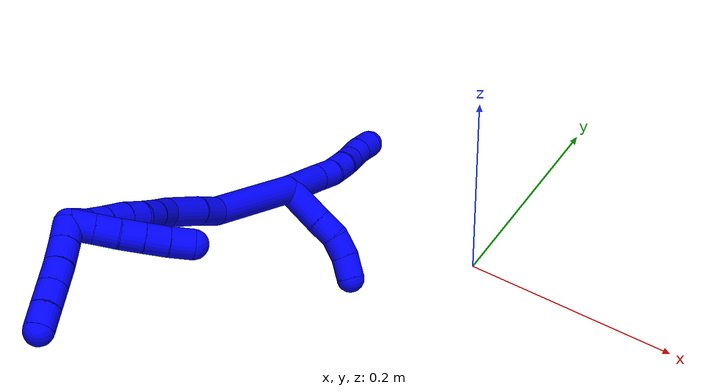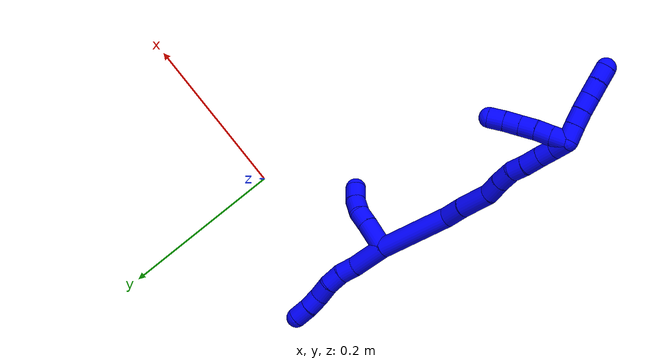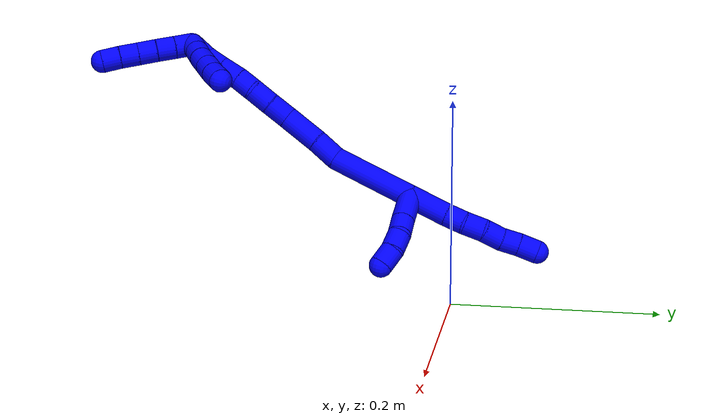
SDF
<sdf version="1.7">
 <world name="default">
  <model name="photoneo_s_sensor">
   <static>1</static>
   <pose>0 0 2 1.57079 1.57079 3.14159</pose>
   <link name="link">
    <inertial><mass>0.1</mass></inertial>
    <sensor name="sensor" type="depth">
     <update_rate>30</update_rate>
     <camera>
      <horizontal_fov>1.22</horizontal_fov>
      <image><width>1920</width><height>1200</height><format>B8G8R8</format></image>
      <clip><near>0.1</near><far>4</far></clip>
      <depth_camera><output>points</output></depth_camera>
     </camera>
     <plugin name="camera_plugin" filename="libgazebo_ros_depth_camera.so">
      <baseline>0.2</baseline>
      <alwaysOn>1</alwaysOn>
      <updateRate>0.0</updateRate>
      <cameraName>camera_ir</cameraName>
      <imageTopicName>/camera/color/image_raw</imageTopicName>
      <cameraInfoTopicName>/camera/color/camera_info</cameraInfoTopicName>
      <depthImageTopicName>/camera/depth/image_raw</depthImageTopicName>
      <depthImageCameraInfoTopicName>/camera/depth/camera_info</depthImageCameraInfoTopicName>
      <pointCloudTopicName>/camera/depth/points</pointCloudTopicName>
      <frameName>fr_optical</frameName>
      <pointCloudCutoff>0.1</pointCloudCutoff>
      <pointCloudCutoffMax>2.0</pointCloudCutoffMax>
      <distortionK1>0</distortionK1>
      <distortionK2>0</distortionK2>
      <distortionK3>0</distortionK3>
      <distortionT1>0</distortionT1>
      <distortionT2>0</distortionT2>
      <CxPrime>0</CxPrime>
      <Cx>0</Cx>
      <Cy>0</Cy>
      <focalLength>0</focalLength>
      <hackBaseline>0</hackBaseline>
     </plugin>
    </sensor>
   </link>
  </model>
  <model name="bin">
   <static>1</static>
   <link name="bottom">
    <collision name="collision-bottom">
     <pose>0 0 -0.01 0 -0 0</pose>
     <geometry><box><size>0.8 0.6 0.02</size></box></geometry>
     <surface>
      <friction><ode><mu>100</mu><mu2>100</mu2></ode></friction>
      <contact><collide_bitmask>65535</collide_bitmask></contact>
     </surface>
    </collision>
   </link>
   <link name="west_wall">
    <collision name="collision-west_wall">
     <pose>-0.41 0 0.1 0 -0 0</pose>
     <geometry><box><size>0.02 0.6 0.2</size></box></geometry>
     <surface>
      <friction><ode><mu>100</mu><mu2>100</mu2></ode></friction>
      <contact><collide_bitmask>65535</collide_bitmask></contact>
     </surface>
    </collision>
   </link>
   <link name="east_wall">
    <collision name="collision-east_wall">
     <pose>0.41 0 0.1 0 -0 0</pose>
     <geometry><box><size>0.02 0.6 0.2</size></box></geometry>
     <surface>
      <friction><ode><mu>100</mu><mu2>100</mu2></ode></friction>
      <contact><collide_bitmask>65535</collide_bitmask></contact>
     </surface>
    </collision>
   </link>
   <link name="south_wall">
    <collision name="collision-south_wall">
     <pose>0 -0.31 0.1 0 -0 0</pose>
     <geometry><box><size>0.8 0.02 0.2</size></box></geometry>
     <surface>
      <friction><ode><mu>100</mu><mu2>100</mu2></ode></friction>
      <contact><collide_bitmask>65535</collide_bitmask></contact>
     </surface>
    </collision>
   </link>
   <link name="north_wall">
    <collision name="collision-north_wall">
     <pose>0 0.31 0.1 0 -0 0</pose>
     <geometry><box><size>0.8 0.02 0.2</size></box></geometry>
     <surface>
      <friction><ode><mu>100</mu><mu2>100</mu2></ode></friction>
      <contact><collide_bitmask>65535</collide_bitmask></contact>
     </surface>
    </collision>
   </link>
  </model>
  <model name="1">
   <static>0</static>
   <link name="1">
    <collision name="collision-cylinder-e_1_2_8">
     <pose>0.003681 0.00508 -0.021301 -2.90746 0.166554 -1.2345</pose>
     <geometry><cylinder><radius>0.0125</radius><length>0.04441</length></cylinder></geometry>
     <surface>
      <friction><ode><mu>1.16</mu><mu2>1.16</mu2><slip1>0</slip1><slip2>0</slip2></ode></friction>
      <contact><ode><kp>1e+06</kp><kd>1</kd><max_vel>0</max_vel><min_depth>0.001</min_depth></ode></contact>
     </surface>
    </collision>
    <visual name="visual-cylinder-e_1_2_8">
     <pose>0.003681 0.00508 -0.021301 -2.90746 0.166554 -1.2345</pose>
     <geometry><cylinder><radius>0.0125</radius><length>0.04441</length></cylinder></geometry>
     <material><ambient>0 0 1 1</ambient></material>
    </visual>
    <collision name="collision-cylinder-e_2_8_9">
     <pose>0.008081 0.011726 -0.052931 -2.99119 0.068609 -0.854826</pose>
     <geometry><cylinder><radius>0.0125</radius><length>0.020946</length></cylinder></geometry>
     <surface>
      <friction><ode><mu>1.16</mu><mu2>1.16</mu2><slip1>0</slip1><slip2>0</slip2></ode></friction>
      <contact><ode><kp>1e+06</kp><kd>1</kd><max_vel>0</max_vel><min_depth>0.001</min_depth></ode></contact>
     </surface>
    </collision>
    <visual name="visual-cylinder-e_2_8_9">
     <pose>0.008081 0.011726 -0.052931 -2.99119 0.068609 -0.854826</pose>
     <geometry><cylinder><radius>0.0125</radius><length>0.020946</length></cylinder></geometry>
     <material><ambient>0 0 1 1</ambient></material>
    </visual>
    <collision name="collision-cylinder-e_3_9_10">
     <pose>0.011891 0.015047 -0.073602 -2.97346 0.286702 -2.08474</pose>
     <geometry><cylinder><radius>0.0125</radius><length>0.021868</length></cylinder></geometry>
     <surface>
      <friction><ode><mu>1.16</mu><mu2>1.16</mu2><slip1>0</slip1><slip2>0</slip2></ode></friction>
      <contact><ode><kp>1e+06</kp><kd>1</kd><max_vel>0</max_vel><min_depth>0.001</min_depth></ode></contact>
     </surface>
    </collision>
    <visual name="visual-cylinder-e_3_9_10">
     <pose>0.011891 0.015047 -0.073602 -2.97346 0.286702 -2.08474</pose>
     <geometry><cylinder><radius>0.0125</radius><length>0.021868</length></cylinder></geometry>
     <material><ambient>0 0 1 1</ambient></material>
    </visual>
    <collision name="collision-cylinder-e_4_10_11">
     <pose>0.019364 0.020187 -0.093113 -2.78801 0.421343 -1.74963</pose>
     <geometry><cylinder><radius>0.0125</radius><length>0.021428</length></cylinder></geometry>
     <surface>
      <friction><ode><mu>1.16</mu><mu2>1.16</mu2><slip1>0</slip1><slip2>0</slip2></ode></friction>
      <contact><ode><kp>1e+06</kp><kd>1</kd><max_vel>0</max_vel><min_depth>0.001</min_depth></ode></contact>
     </surface>
    </collision>
    <visual name="visual-cylinder-e_4_10_11">
     <pose>0.019364 0.020187 -0.093113 -2.78801 0.421343 -1.74963</pose>
     <geometry><cylinder><radius>0.0125</radius><length>0.021428</length></cylinder></geometry>
     <material><ambient>0 0 1 1</ambient></material>
    </visual>
    <collision name="collision-cylinder-e_5_11_12">
     <pose>0.027533 0.024839 -0.11147 -3.00456 0.38774 -2.4691</pose>
     <geometry><cylinder><radius>0.0125</radius><length>0.020031</length></cylinder></geometry>
     <surface>
      <friction><ode><mu>1.16</mu><mu2>1.16</mu2><slip1>0</slip1><slip2>0</slip2></ode></friction>
      <contact><ode><kp>1e+06</kp><kd>1</kd><max_vel>0</max_vel><min_depth>0.001</min_depth></ode></contact>
     </surface>
    </collision>
    <visual name="visual-cylinder-e_5_11_12">
     <pose>0.027533 0.024839 -0.11147 -3.00456 0.38774 -2.4691</pose>
     <geometry><cylinder><radius>0.0125</radius><length>0.020031</length></cylinder></geometry>
     <material><ambient>0 0 1 1</ambient></material>
    </visual>
    <collision name="collision-cylinder-e_6_12_6">
     <pose>0.034039 0.027867 -0.13081 -2.96981 0.258001 -1.96963</pose>
     <geometry><cylinder><radius>0.0125</radius><length>0.021317</length></cylinder></geometry>
     <surface>
      <friction><ode><mu>1.16</mu><mu2>1.16</mu2><slip1>0</slip1><slip2>0</slip2></ode></friction>
      <contact><ode><kp>1e+06</kp><kd>1</kd><max_vel>0</max_vel><min_depth>0.001</min_depth></ode></contact>
     </surface>
    </collision>
    <visual name="visual-cylinder-e_6_12_6">
     <pose>0.034039 0.027867 -0.13081 -2.96981 0.258001 -1.96963</pose>
     <geometry><cylinder><radius>0.0125</radius><length>0.021317</length></cylinder></geometry>
     <material><ambient>0 0 1 1</ambient></material>
    </visual>
    <collision name="collision-cylinder-e_1_2_13">
     <pose>-0.016618 0.008636 -0.004537 -2.05456 -1.03994 1.51694</pose>
     <geometry><cylinder><radius>0.0125</radius><length>0.038539</length></cylinder></geometry>
     <surface>
      <friction><ode><mu>1.16</mu><mu2>1.16</mu2><slip1>0</slip1><slip2>0</slip2></ode></friction>
      <contact><ode><kp>1e+06</kp><kd>1</kd><max_vel>0</max_vel><min_depth>0.001</min_depth></ode></contact>
     </surface>
    </collision>
    <visual name="visual-cylinder-e_1_2_13">
     <pose>-0.016618 0.008636 -0.004537 -2.05456 -1.03994 1.51694</pose>
     <geometry><cylinder><radius>0.0125</radius><length>0.038539</length></cylinder></geometry>
     <material><ambient>0 0 1 1</ambient></material>
    </visual>
    <collision name="collision-cylinder-e_2_13_14">
     <pose>-0.041958 0.021716 -0.011844 -2.12807 -1.03017 1.59032</pose>
     <geometry><cylinder><radius>0.0125</radius><length>0.020348</length></cylinder></geometry>
     <surface>
      <friction><ode><mu>1.16</mu><mu2>1.16</mu2><slip1>0</slip1><slip2>0</slip2></ode></friction>
      <contact><ode><kp>1e+06</kp><kd>1</kd><max_vel>0</max_vel><min_depth>0.001</min_depth></ode></contact>
     </surface>
    </collision>
    <visual name="visual-cylinder-e_2_13_14">
     <pose>-0.041958 0.021716 -0.011844 -2.12807 -1.03017 1.59032</pose>
     <geometry><cylinder><radius>0.0125</radius><length>0.020348</length></cylinder></geometry>
     <material><ambient>0 0 1 1</ambient></material>
    </visual>
    <collision name="collision-cylinder-e_3_14_15">
     <pose>-0.058255 0.032805 -0.015215 -1.66105 -0.848614 0.918438</pose>
     <geometry><cylinder><radius>0.0125</radius><length>0.020187</length></cylinder></geometry>
     <surface>
      <friction><ode><mu>1.16</mu><mu2>1.16</mu2><slip1>0</slip1><slip2>0</slip2></ode></friction>
      <contact><ode><kp>1e+06</kp><kd>1</kd><max_vel>0</max_vel><min_depth>0.001</min_depth></ode></contact>
     </surface>
    </collision>
    <visual name="visual-cylinder-e_3_14_15">
     <pose>-0.058255 0.032805 -0.015215 -1.66105 -0.848614 0.918438</pose>
     <geometry><cylinder><radius>0.0125</radius><length>0.020187</length></cylinder></geometry>
     <material><ambient>0 0 1 1</ambient></material>
    </visual>
    <collision name="collision-cylinder-e_4_15_5">
     <pose>-0.073255 0.046581 -0.013952 -1.31506 -0.789191 0.622221</pose>
     <geometry><cylinder><radius>0.0125</radius><length>0.020926</length></cylinder></geometry>
     <surface>
      <friction><ode><mu>1.16</mu><mu2>1.16</mu2><slip1>0</slip1><slip2>0</slip2></ode></friction>
      <contact><ode><kp>1e+06</kp><kd>1</kd><max_vel>0</max_vel><min_depth>0.001</min_depth></ode></contact>
     </surface>
    </collision>
    <visual name="visual-cylinder-e_4_15_5">
     <pose>-0.073255 0.046581 -0.013952 -1.31506 -0.789191 0.622221</pose>
     <geometry><cylinder><radius>0.0125</radius><length>0.020926</length></cylinder></geometry>
     <material><ambient>0 0 1 1</ambient></material>
    </visual>
    <collision name="collision-cylinder-e_1_2_16">
     <pose>-0.001661 -0.008588 0.046033 0.18444 -0.035445 -0.003278</pose>
     <geometry><cylinder><radius>0.0125</radius><length>0.093714</length></cylinder></geometry>
     <surface>
      <friction><ode><mu>1.16</mu><mu2>1.16</mu2><slip1>0</slip1><slip2>0</slip2></ode></friction>
      <contact><ode><kp>1e+06</kp><kd>1</kd><max_vel>0</max_vel><min_depth>0.001</min_depth></ode></contact>
     </surface>
    </collision>
    <visual name="visual-cylinder-e_1_2_16">
     <pose>-0.001661 -0.008588 0.046033 0.18444 -0.035445 -0.003278</pose>
     <geometry><cylinder><radius>0.0125</radius><length>0.093714</length></cylinder></geometry>
     <material><ambient>0 0 1 1</ambient></material>
    </visual>
    <collision name="collision-cylinder-e_2_16_17">
     <pose>-0.004907 -0.023952 0.104396 0.50251 -0.112275 -0.028847</pose>
     <geometry><cylinder><radius>0.0125</radius><length>0.028316</length></cylinder></geometry>
     <surface>
      <friction><ode><mu>1.16</mu><mu2>1.16</mu2><slip1>0</slip1><slip2>0</slip2></ode></friction>
      <contact><ode><kp>1e+06</kp><kd>1</kd><max_vel>0</max_vel><min_depth>0.001</min_depth></ode></contact>
     </surface>
    </collision>
    <visual name="visual-cylinder-e_2_16_17">
     <pose>-0.004907 -0.023952 0.104396 0.50251 -0.112275 -0.028847</pose>
     <geometry><cylinder><radius>0.0125</radius><length>0.028316</length></cylinder></geometry>
     <material><ambient>0 0 1 1</ambient></material>
    </visual>
    <collision name="collision-cylinder-e_3_17_18">
     <pose>-0.007688 -0.039233 0.136179 0.412144 -0.056196 -0.01175</pose>
     <geometry><cylinder><radius>0.0125</radius><length>0.04253</length></cylinder></geometry>
     <surface>
      <friction><ode><mu>1.16</mu><mu2>1.16</mu2><slip1>0</slip1><slip2>0</slip2></ode></friction>
      <contact><ode><kp>1e+06</kp><kd>1</kd><max_vel>0</max_vel><min_depth>0.001</min_depth></ode></contact>
     </surface>
    </collision>
    <visual name="visual-cylinder-e_3_17_18">
     <pose>-0.007688 -0.039233 0.136179 0.412144 -0.056196 -0.01175</pose>
     <geometry><cylinder><radius>0.0125</radius><length>0.04253</length></cylinder></geometry>
     <material><ambient>0 0 1 1</ambient></material>
    </visual>
    <collision name="collision-cylinder-e_4_18_19">
     <pose>-0.012856 -0.053812 0.165922 0.533304 -0.321041 -0.088398</pose>
     <geometry><cylinder><radius>0.0125</radius><length>0.025183</length></cylinder></geometry>
     <surface>
      <friction><ode><mu>1.16</mu><mu2>1.16</mu2><slip1>0</slip1><slip2>0</slip2></ode></friction>
      <contact><ode><kp>1e+06</kp><kd>1</kd><max_vel>0</max_vel><min_depth>0.001</min_depth></ode></contact>
     </surface>
    </collision>
    <visual name="visual-cylinder-e_4_18_19">
     <pose>-0.012856 -0.053812 0.165922 0.533304 -0.321041 -0.088398</pose>
     <geometry><cylinder><radius>0.0125</radius><length>0.025183</length></cylinder></geometry>
     <material><ambient>0 0 1 1</ambient></material>
    </visual>
    <collision name="collision-cylinder-e_5_19_20">
     <pose>-0.019689 -0.065468 0.1862 0.509565 -0.244951 -0.064095</pose>
     <geometry><cylinder><radius>0.0125</radius><length>0.023591</length></cylinder></geometry>
     <surface>
      <friction><ode><mu>1.16</mu><mu2>1.16</mu2><slip1>0</slip1><slip2>0</slip2></ode></friction>
      <contact><ode><kp>1e+06</kp><kd>1</kd><max_vel>0</max_vel><min_depth>0.001</min_depth></ode></contact>
     </surface>
    </collision>
    <visual name="visual-cylinder-e_5_19_20">
     <pose>-0.019689 -0.065468 0.1862 0.509565 -0.244951 -0.064095</pose>
     <geometry><cylinder><radius>0.0125</radius><length>0.023591</length></cylinder></geometry>
     <material><ambient>0 0 1 1</ambient></material>
    </visual>
    <collision name="collision-cylinder-e_6_20_21">
     <pose>-0.022691 -0.074799 0.205484 0.383448 -0.01406 -0.002729</pose>
     <geometry><cylinder><radius>0.0125</radius><length>0.020046</length></cylinder></geometry>
     <surface>
      <friction><ode><mu>1.16</mu><mu2>1.16</mu2><slip1>0</slip1><slip2>0</slip2></ode></friction>
      <contact><ode><kp>1e+06</kp><kd>1</kd><max_vel>0</max_vel><min_depth>0.001</min_depth></ode></contact>
     </surface>
    </collision>
    <visual name="visual-cylinder-e_6_20_21">
     <pose>-0.022691 -0.074799 0.205484 0.383448 -0.01406 -0.002729</pose>
     <geometry><cylinder><radius>0.0125</radius><length>0.020046</length></cylinder></geometry>
     <material><ambient>0 0 1 1</ambient></material>
    </visual>
    <collision name="collision-cylinder-e_7_21_22">
     <pose>-0.024054 -0.082213 0.226015 0.315228 -0.103051 -0.016392</pose>
     <geometry><cylinder><radius>0.0125</radius><length>0.023763</length></cylinder></geometry>
     <surface>
      <friction><ode><mu>1.16</mu><mu2>1.16</mu2><slip1>0</slip1><slip2>0</slip2></ode></friction>
      <contact><ode><kp>1e+06</kp><kd>1</kd><max_vel>0</max_vel><min_depth>0.001</min_depth></ode></contact>
     </surface>
    </collision>
    <visual name="visual-cylinder-e_7_21_22">
     <pose>-0.024054 -0.082213 0.226015 0.315228 -0.103051 -0.016392</pose>
     <geometry><cylinder><radius>0.0125</radius><length>0.023763</length></cylinder></geometry>
     <material><ambient>0 0 1 1</ambient></material>
    </visual>
    <collision name="collision-cylinder-e_8_22_23">
     <pose>-0.026035 -0.089239 0.246994 0.332211 -0.073467 -0.012322</pose>
     <geometry><cylinder><radius>0.0125</radius><length>0.02067</length></cylinder></geometry>
     <surface>
      <friction><ode><mu>1.16</mu><mu2>1.16</mu2><slip1>0</slip1><slip2>0</slip2></ode></friction>
      <contact><ode><kp>1e+06</kp><kd>1</kd><max_vel>0</max_vel><min_depth>0.001</min_depth></ode></contact>
     </surface>
    </collision>
    <visual name="visual-cylinder-e_8_22_23">
     <pose>-0.026035 -0.089239 0.246994 0.332211 -0.073467 -0.012322</pose>
     <geometry><cylinder><radius>0.0125</radius><length>0.02067</length></cylinder></geometry>
     <material><ambient>0 0 1 1</ambient></material>
    </visual>
    <collision name="collision-cylinder-e_9_23_1">
     <pose>-0.027688 -0.097814 0.266489 0.491002 -0.080773 -0.020249</pose>
     <geometry><cylinder><radius>0.0125</radius><length>0.022187</length></cylinder></geometry>
     <surface>
      <friction><ode><mu>1.16</mu><mu2>1.16</mu2><slip1>0</slip1><slip2>0</slip2></ode></friction>
      <contact><ode><kp>1e+06</kp><kd>1</kd><max_vel>0</max_vel><min_depth>0.001</min_depth></ode></contact>
     </surface>
    </collision>
    <visual name="visual-cylinder-e_9_23_1">
     <pose>-0.027688 -0.097814 0.266489 0.491002 -0.080773 -0.020249</pose>
     <geometry><cylinder><radius>0.0125</radius><length>0.022187</length></cylinder></geometry>
     <material><ambient>0 0 1 1</ambient></material>
    </visual>
    <collision name="collision-cylinder-e_1_1_24">
     <pose>-0.035219 -0.101799 0.26886 -2.97668 -0.72554 2.71283</pose>
     <geometry><cylinder><radius>0.0125</radius><length>0.02</length></cylinder></geometry>
     <surface>
      <friction><ode><mu>1.16</mu><mu2>1.16</mu2><slip1>0</slip1><slip2>0</slip2></ode></friction>
      <contact><ode><kp>1e+06</kp><kd>1</kd><max_vel>0</max_vel><min_depth>0.001</min_depth></ode></contact>
     </surface>
    </collision>
    <visual name="visual-cylinder-e_1_1_24">
     <pose>-0.035219 -0.101799 0.26886 -2.97668 -0.72554 2.71283</pose>
     <geometry><cylinder><radius>0.0125</radius><length>0.02</length></cylinder></geometry>
     <material><ambient>0 0 1 1</ambient></material>
    </visual>
    <collision name="collision-cylinder-e_2_24_25">
     <pose>-0.048711 -0.099496 0.254281 -2.99334 -0.75556 2.77161</pose>
     <geometry><cylinder><radius>0.0125</radius><length>0.02</length></cylinder></geometry>
     <surface>
      <friction><ode><mu>1.16</mu><mu2>1.16</mu2><slip1>0</slip1><slip2>0</slip2></ode></friction>
      <contact><ode><kp>1e+06</kp><kd>1</kd><max_vel>0</max_vel><min_depth>0.001</min_depth></ode></contact>
     </surface>
    </collision>
    <visual name="visual-cylinder-e_2_24_25">
     <pose>-0.048711 -0.099496 0.254281 -2.99334 -0.75556 2.77161</pose>
     <geometry><cylinder><radius>0.0125</radius><length>0.02</length></cylinder></geometry>
     <material><ambient>0 0 1 1</ambient></material>
    </visual>
    <collision name="collision-cylinder-e_3_25_26">
     <pose>-0.061698 -0.097096 0.239293 -2.97312 -0.659879 2.65813</pose>
     <geometry><cylinder><radius>0.0125</radius><length>0.02</length></cylinder></geometry>
     <surface>
      <friction><ode><mu>1.16</mu><mu2>1.16</mu2><slip1>0</slip1><slip2>0</slip2></ode></friction>
      <contact><ode><kp>1e+06</kp><kd>1</kd><max_vel>0</max_vel><min_depth>0.001</min_depth></ode></contact>
     </surface>
    </collision>
    <visual name="visual-cylinder-e_3_25_26">
     <pose>-0.061698 -0.097096 0.239293 -2.97312 -0.659879 2.65813</pose>
     <geometry><cylinder><radius>0.0125</radius><length>0.02</length></cylinder></geometry>
     <material><ambient>0 0 1 1</ambient></material>
    </visual>
    <collision name="collision-cylinder-e_4_26_27">
     <pose>-0.074087 -0.094616 0.223791 -2.99295 -0.676144 2.7242</pose>
     <geometry><cylinder><radius>0.0125</radius><length>0.02</length></cylinder></geometry>
     <surface>
      <friction><ode><mu>1.16</mu><mu2>1.16</mu2><slip1>0</slip1><slip2>0</slip2></ode></friction>
      <contact><ode><kp>1e+06</kp><kd>1</kd><max_vel>0</max_vel><min_depth>0.001</min_depth></ode></contact>
     </surface>
    </collision>
    <visual name="visual-cylinder-e_4_26_27">
     <pose>-0.074087 -0.094616 0.223791 -2.99295 -0.676144 2.7242</pose>
     <geometry><cylinder><radius>0.0125</radius><length>0.02</length></cylinder></geometry>
     <material><ambient>0 0 1 1</ambient></material>
    </visual>
    <collision name="collision-cylinder-e_5_27_4">
     <pose>-0.086154 -0.092538 0.20799 -3.02795 -0.619883 2.79003</pose>
     <geometry><cylinder><radius>0.0125</radius><length>0.02</length></cylinder></geometry>
     <surface>
      <friction><ode><mu>1.16</mu><mu2>1.16</mu2><slip1>0</slip1><slip2>0</slip2></ode></friction>
      <contact><ode><kp>1e+06</kp><kd>1</kd><max_vel>0</max_vel><min_depth>0.001</min_depth></ode></contact>
     </surface>
    </collision>
    <visual name="visual-cylinder-e_5_27_4">
     <pose>-0.086154 -0.092538 0.20799 -3.02795 -0.619883 2.79003</pose>
     <geometry><cylinder><radius>0.0125</radius><length>0.02</length></cylinder></geometry>
     <material><ambient>0 0 1 1</ambient></material>
    </visual>
    <collision name="collision-cylinder-e_1_1_28">
     <pose>-0.035277 -0.100344 0.283168 -0.369594 -0.733268 0.143315</pose>
     <geometry><cylinder><radius>0.0125</radius><length>0.02</length></cylinder></geometry>
     <surface>
      <friction><ode><mu>1.16</mu><mu2>1.16</mu2><slip1>0</slip1><slip2>0</slip2></ode></friction>
      <contact><ode><kp>1e+06</kp><kd>1</kd><max_vel>0</max_vel><min_depth>0.001</min_depth></ode></contact>
     </surface>
    </collision>
    <visual name="visual-cylinder-e_1_1_28">
     <pose>-0.035277 -0.100344 0.283168 -0.369594 -0.733268 0.143315</pose>
     <geometry><cylinder><radius>0.0125</radius><length>0.02</length></cylinder></geometry>
     <material><ambient>0 0 1 1</ambient></material>
    </visual>
    <collision name="collision-cylinder-e_2_28_29">
     <pose>-0.048419 -0.094971 0.29725 -0.359495 -0.700984 0.132666</pose>
     <geometry><cylinder><radius>0.0125</radius><length>0.02</length></cylinder></geometry>
     <surface>
      <friction><ode><mu>1.16</mu><mu2>1.16</mu2><slip1>0</slip1><slip2>0</slip2></ode></friction>
      <contact><ode><kp>1e+06</kp><kd>1</kd><max_vel>0</max_vel><min_depth>0.001</min_depth></ode></contact>
     </surface>
    </collision>
    <visual name="visual-cylinder-e_2_28_29">
     <pose>-0.048419 -0.094971 0.29725 -0.359495 -0.700984 0.132666</pose>
     <geometry><cylinder><radius>0.0125</radius><length>0.02</length></cylinder></geometry>
     <material><ambient>0 0 1 1</ambient></material>
    </visual>
    <collision name="collision-cylinder-e_3_29_30">
     <pose>-0.060831 -0.089234 0.31183 -0.389484 -0.638816 0.130284</pose>
     <geometry><cylinder><radius>0.0125</radius><length>0.02</length></cylinder></geometry>
     <surface>
      <friction><ode><mu>1.16</mu><mu2>1.16</mu2><slip1>0</slip1><slip2>0</slip2></ode></friction>
      <contact><ode><kp>1e+06</kp><kd>1</kd><max_vel>0</max_vel><min_depth>0.001</min_depth></ode></contact>
     </surface>
    </collision>
    <visual name="visual-cylinder-e_3_29_30">
     <pose>-0.060831 -0.089234 0.31183 -0.389484 -0.638816 0.130284</pose>
     <geometry><cylinder><radius>0.0125</radius><length>0.02</length></cylinder></geometry>
     <material><ambient>0 0 1 1</ambient></material>
    </visual>
    <collision name="collision-cylinder-e_4_30_31">
     <pose>-0.072741 -0.083195 0.326719 -0.381174 -0.636971 0.12705</pose>
     <geometry><cylinder><radius>0.0125</radius><length>0.02</length></cylinder></geometry>
     <surface>
      <friction><ode><mu>1.16</mu><mu2>1.16</mu2><slip1>0</slip1><slip2>0</slip2></ode></friction>
      <contact><ode><kp>1e+06</kp><kd>1</kd><max_vel>0</max_vel><min_depth>0.001</min_depth></ode></contact>
     </surface>
    </collision>
    <visual name="visual-cylinder-e_4_30_31">
     <pose>-0.072741 -0.083195 0.326719 -0.381174 -0.636971 0.12705</pose>
     <geometry><cylinder><radius>0.0125</radius><length>0.02</length></cylinder></geometry>
     <material><ambient>0 0 1 1</ambient></material>
    </visual>
    <collision name="collision-cylinder-e_5_31_3">
     <pose>-0.084499 -0.076724 0.341538 -0.44189 -0.619987 0.143648</pose>
     <geometry><cylinder><radius>0.0125</radius><length>0.02</length></cylinder></geometry>
     <surface>
      <friction><ode><mu>1.16</mu><mu2>1.16</mu2><slip1>0</slip1><slip2>0</slip2></ode></friction>
      <contact><ode><kp>1e+06</kp><kd>1</kd><max_vel>0</max_vel><min_depth>0.001</min_depth></ode></contact>
     </surface>
    </collision>
    <visual name="visual-cylinder-e_5_31_3">
     <pose>-0.084499 -0.076724 0.341538 -0.44189 -0.619987 0.143648</pose>
     <geometry><cylinder><radius>0.0125</radius><length>0.02</length></cylinder></geometry>
     <material><ambient>0 0 1 1</ambient></material>
    </visual>
    <collision name="collision-sphere-3">
     <pose>-0.09031 -0.073244 0.348895 0 -0 0</pose>
     <geometry><sphere><radius>0.0125</radius></sphere></geometry>
     <surface>
      <friction><ode><mu>1.16</mu><mu2>1.16</mu2><slip1>0</slip1><slip2>0</slip2></ode></friction>
      <contact><ode><kp>1e+06</kp><kd>1</kd><max_vel>0</max_vel><min_depth>0.001</min_depth></ode></contact>
     </surface>
    </collision>
    <visual name="visual-sphere-3">
     <pose>-0.09031 -0.073244 0.348895 0 -0 0</pose>
     <geometry><sphere><radius>0.0125</radius></sphere></geometry>
     <material><ambient>0 0 1 1</ambient></material>
    </visual>
    <collision name="collision-sphere-31">
     <pose>-0.078689 -0.080205 0.334181 0 -0 0</pose>
     <geometry><sphere><radius>0.0125</radius></sphere></geometry>
     <surface>
      <friction><ode><mu>1.16</mu><mu2>1.16</mu2><slip1>0</slip1><slip2>0</slip2></ode></friction>
      <contact><ode><kp>1e+06</kp><kd>1</kd><max_vel>0</max_vel><min_depth>0.001</min_depth></ode></contact>
     </surface>
    </collision>
    <visual name="visual-sphere-31">
     <pose>-0.078689 -0.080205 0.334181 0 -0 0</pose>
     <geometry><sphere><radius>0.0125</radius></sphere></geometry>
     <material><ambient>0 0 1 1</ambient></material>
    </visual>
    <collision name="collision-sphere-30">
     <pose>-0.066794 -0.086186 0.319257 0 -0 0</pose>
     <geometry><sphere><radius>0.0125</radius></sphere></geometry>
     <surface>
      <friction><ode><mu>1.16</mu><mu2>1.16</mu2><slip1>0</slip1><slip2>0</slip2></ode></friction>
      <contact><ode><kp>1e+06</kp><kd>1</kd><max_vel>0</max_vel><min_depth>0.001</min_depth></ode></contact>
     </surface>
    </collision>
    <visual name="visual-sphere-30">
     <pose>-0.066794 -0.086186 0.319257 0 -0 0</pose>
     <geometry><sphere><radius>0.0125</radius></sphere></geometry>
     <material><ambient>0 0 1 1</ambient></material>
    </visual>
    <collision name="collision-sphere-29">
     <pose>-0.054869 -0.092283 0.304404 0 -0 0</pose>
     <geometry><sphere><radius>0.0125</radius></sphere></geometry>
     <surface>
      <friction><ode><mu>1.16</mu><mu2>1.16</mu2><slip1>0</slip1><slip2>0</slip2></ode></friction>
      <contact><ode><kp>1e+06</kp><kd>1</kd><max_vel>0</max_vel><min_depth>0.001</min_depth></ode></contact>
     </surface>
    </collision>
    <visual name="visual-sphere-29">
     <pose>-0.054869 -0.092283 0.304404 0 -0 0</pose>
     <geometry><sphere><radius>0.0125</radius></sphere></geometry>
     <material><ambient>0 0 1 1</ambient></material>
    </visual>
    <collision name="collision-sphere-28">
     <pose>-0.04197 -0.09766 0.290096 0 -0 0</pose>
     <geometry><sphere><radius>0.0125</radius></sphere></geometry>
     <surface>
      <friction><ode><mu>1.16</mu><mu2>1.16</mu2><slip1>0</slip1><slip2>0</slip2></ode></friction>
      <contact><ode><kp>1e+06</kp><kd>1</kd><max_vel>0</max_vel><min_depth>0.001</min_depth></ode></contact>
     </surface>
    </collision>
    <visual name="visual-sphere-28">
     <pose>-0.04197 -0.09766 0.290096 0 -0 0</pose>
     <geometry><sphere><radius>0.0125</radius></sphere></geometry>
     <material><ambient>0 0 1 1</ambient></material>
    </visual>
    <collision name="collision-sphere-4">
     <pose>-0.091963 -0.091615 0.199903 0 -0 0</pose>
     <geometry><sphere><radius>0.0125</radius></sphere></geometry>
     <surface>
      <friction><ode><mu>1.16</mu><mu2>1.16</mu2><slip1>0</slip1><slip2>0</slip2></ode></friction>
      <contact><ode><kp>1e+06</kp><kd>1</kd><max_vel>0</max_vel><min_depth>0.001</min_depth></ode></contact>
     </surface>
    </collision>
    <visual name="visual-sphere-4">
     <pose>-0.091963 -0.091615 0.199903 0 -0 0</pose>
     <geometry><sphere><radius>0.0125</radius></sphere></geometry>
     <material><ambient>0 0 1 1</ambient></material>
    </visual>
    <collision name="collision-sphere-27">
     <pose>-0.080344 -0.093461 0.216077 0 -0 0</pose>
     <geometry><sphere><radius>0.0125</radius></sphere></geometry>
     <surface>
      <friction><ode><mu>1.16</mu><mu2>1.16</mu2><slip1>0</slip1><slip2>0</slip2></ode></friction>
      <contact><ode><kp>1e+06</kp><kd>1</kd><max_vel>0</max_vel><min_depth>0.001</min_depth></ode></contact>
     </surface>
    </collision>
    <visual name="visual-sphere-27">
     <pose>-0.080344 -0.093461 0.216077 0 -0 0</pose>
     <geometry><sphere><radius>0.0125</radius></sphere></geometry>
     <material><ambient>0 0 1 1</ambient></material>
    </visual>
    <collision name="collision-sphere-26">
     <pose>-0.067829 -0.095771 0.231504 0 -0 0</pose>
     <geometry><sphere><radius>0.0125</radius></sphere></geometry>
     <surface>
      <friction><ode><mu>1.16</mu><mu2>1.16</mu2><slip1>0</slip1><slip2>0</slip2></ode></friction>
      <contact><ode><kp>1e+06</kp><kd>1</kd><max_vel>0</max_vel><min_depth>0.001</min_depth></ode></contact>
     </surface>
    </collision>
    <visual name="visual-sphere-26">
     <pose>-0.067829 -0.095771 0.231504 0 -0 0</pose>
     <geometry><sphere><radius>0.0125</radius></sphere></geometry>
     <material><ambient>0 0 1 1</ambient></material>
    </visual>
    <collision name="collision-sphere-25">
     <pose>-0.055568 -0.098421 0.247082 0 -0 0</pose>
     <geometry><sphere><radius>0.0125</radius></sphere></geometry>
     <surface>
      <friction><ode><mu>1.16</mu><mu2>1.16</mu2><slip1>0</slip1><slip2>0</slip2></ode></friction>
      <contact><ode><kp>1e+06</kp><kd>1</kd><max_vel>0</max_vel><min_depth>0.001</min_depth></ode></contact>
     </surface>
    </collision>
    <visual name="visual-sphere-25">
     <pose>-0.055568 -0.098421 0.247082 0 -0 0</pose>
     <geometry><sphere><radius>0.0125</radius></sphere></geometry>
     <material><ambient>0 0 1 1</ambient></material>
    </visual>
    <collision name="collision-sphere-24">
     <pose>-0.041854 -0.100571 0.26148 0 -0 0</pose>
     <geometry><sphere><radius>0.0125</radius></sphere></geometry>
     <surface>
      <friction><ode><mu>1.16</mu><mu2>1.16</mu2><slip1>0</slip1><slip2>0</slip2></ode></friction>
      <contact><ode><kp>1e+06</kp><kd>1</kd><max_vel>0</max_vel><min_depth>0.001</min_depth></ode></contact>
     </surface>
    </collision>
    <visual name="visual-sphere-24">
     <pose>-0.041854 -0.100571 0.26148 0 -0 0</pose>
     <geometry><sphere><radius>0.0125</radius></sphere></geometry>
     <material><ambient>0 0 1 1</ambient></material>
    </visual>
    <collision name="collision-sphere-1">
     <pose>-0.028583 -0.103027 0.27624 0 -0 0</pose>
     <geometry><sphere><radius>0.0125</radius></sphere></geometry>
     <surface>
      <friction><ode><mu>1.16</mu><mu2>1.16</mu2><slip1>0</slip1><slip2>0</slip2></ode></friction>
      <contact><ode><kp>1e+06</kp><kd>1</kd><max_vel>0</max_vel><min_depth>0.001</min_depth></ode></contact>
     </surface>
    </collision>
    <visual name="visual-sphere-1">
     <pose>-0.028583 -0.103027 0.27624 0 -0 0</pose>
     <geometry><sphere><radius>0.0125</radius></sphere></geometry>
     <material><ambient>0 0 1 1</ambient></material>
    </visual>
    <collision name="collision-sphere-23">
     <pose>-0.026793 -0.0926 0.256738 0 -0 0</pose>
     <geometry><sphere><radius>0.0125</radius></sphere></geometry>
     <surface>
      <friction><ode><mu>1.16</mu><mu2>1.16</mu2><slip1>0</slip1><slip2>0</slip2></ode></friction>
      <contact><ode><kp>1e+06</kp><kd>1</kd><max_vel>0</max_vel><min_depth>0.001</min_depth></ode></contact>
     </surface>
    </collision>
    <visual name="visual-sphere-23">
     <pose>-0.026793 -0.0926 0.256738 0 -0 0</pose>
     <geometry><sphere><radius>0.0125</radius></sphere></geometry>
     <material><ambient>0 0 1 1</ambient></material>
    </visual>
    <collision name="collision-sphere-22">
     <pose>-0.025276 -0.085877 0.237251 0 -0 0</pose>
     <geometry><sphere><radius>0.0125</radius></sphere></geometry>
     <surface>
      <friction><ode><mu>1.16</mu><mu2>1.16</mu2><slip1>0</slip1><slip2>0</slip2></ode></friction>
      <contact><ode><kp>1e+06</kp><kd>1</kd><max_vel>0</max_vel><min_depth>0.001</min_depth></ode></contact>
     </surface>
    </collision>
    <visual name="visual-sphere-22">
     <pose>-0.025276 -0.085877 0.237251 0 -0 0</pose>
     <geometry><sphere><radius>0.0125</radius></sphere></geometry>
     <material><ambient>0 0 1 1</ambient></material>
    </visual>
    <collision name="collision-sphere-21">
     <pose>-0.022832 -0.078549 0.214778 0 -0 0</pose>
     <geometry><sphere><radius>0.0125</radius></sphere></geometry>
     <surface>
      <friction><ode><mu>1.16</mu><mu2>1.16</mu2><slip1>0</slip1><slip2>0</slip2></ode></friction>
      <contact><ode><kp>1e+06</kp><kd>1</kd><max_vel>0</max_vel><min_depth>0.001</min_depth></ode></contact>
     </surface>
    </collision>
    <visual name="visual-sphere-21">
     <pose>-0.022832 -0.078549 0.214778 0 -0 0</pose>
     <geometry><sphere><radius>0.0125</radius></sphere></geometry>
     <material><ambient>0 0 1 1</ambient></material>
    </visual>
    <collision name="collision-sphere-12">
     <pose>0.03132 0.026105 -0.120656 0 -0 0</pose>
     <geometry><sphere><radius>0.0125</radius></sphere></geometry>
     <surface>
      <friction><ode><mu>1.16</mu><mu2>1.16</mu2><slip1>0</slip1><slip2>0</slip2></ode></friction>
      <contact><ode><kp>1e+06</kp><kd>1</kd><max_vel>0</max_vel><min_depth>0.001</min_depth></ode></contact>
     </surface>
    </collision>
    <visual name="visual-sphere-12">
     <pose>0.03132 0.026105 -0.120656 0 -0 0</pose>
     <geometry><sphere><radius>0.0125</radius></sphere></geometry>
     <material><ambient>0 0 1 1</ambient></material>
    </visual>
    <collision name="collision-sphere-11">
     <pose>0.023746 0.023572 -0.102285 0 -0 0</pose>
     <geometry><sphere><radius>0.0125</radius></sphere></geometry>
     <surface>
      <friction><ode><mu>1.16</mu><mu2>1.16</mu2><slip1>0</slip1><slip2>0</slip2></ode></friction>
      <contact><ode><kp>1e+06</kp><kd>1</kd><max_vel>0</max_vel><min_depth>0.001</min_depth></ode></contact>
     </surface>
    </collision>
    <visual name="visual-sphere-11">
     <pose>0.023746 0.023572 -0.102285 0 -0 0</pose>
     <geometry><sphere><radius>0.0125</radius></sphere></geometry>
     <material><ambient>0 0 1 1</ambient></material>
    </visual>
    <collision name="collision-sphere-10">
     <pose>0.014983 0.016802 -0.083941 0 -0 0</pose>
     <geometry><sphere><radius>0.0125</radius></sphere></geometry>
     <surface>
      <friction><ode><mu>1.16</mu><mu2>1.16</mu2><slip1>0</slip1><slip2>0</slip2></ode></friction>
      <contact><ode><kp>1e+06</kp><kd>1</kd><max_vel>0</max_vel><min_depth>0.001</min_depth></ode></contact>
     </surface>
    </collision>
    <visual name="visual-sphere-10">
     <pose>0.014983 0.016802 -0.083941 0 -0 0</pose>
     <geometry><sphere><radius>0.0125</radius></sphere></geometry>
     <material><ambient>0 0 1 1</ambient></material>
    </visual>
    <collision name="collision-sphere-9">
     <pose>0.008799 0.013291 -0.063262 0 -0 0</pose>
     <geometry><sphere><radius>0.0125</radius></sphere></geometry>
     <surface>
      <friction><ode><mu>1.16</mu><mu2>1.16</mu2><slip1>0</slip1><slip2>0</slip2></ode></friction>
      <contact><ode><kp>1e+06</kp><kd>1</kd><max_vel>0</max_vel><min_depth>0.001</min_depth></ode></contact>
     </surface>
    </collision>
    <visual name="visual-sphere-9">
     <pose>0.008799 0.013291 -0.063262 0 -0 0</pose>
     <geometry><sphere><radius>0.0125</radius></sphere></geometry>
     <material><ambient>0 0 1 1</ambient></material>
    </visual>
    <collision name="collision-sphere-2">
     <geometry><sphere><radius>0.0125</radius></sphere></geometry>
     <surface>
      <friction><ode><mu>1.16</mu><mu2>1.16</mu2><slip1>0</slip1><slip2>0</slip2></ode></friction>
      <contact><ode><kp>1e+06</kp><kd>1</kd><max_vel>0</max_vel><min_depth>0.001</min_depth></ode></contact>
     </surface>
    </collision>
    <visual name="visual-sphere-2">
     <geometry><sphere><radius>0.0125</radius></sphere></geometry>
     <material><ambient>0 0 1 1</ambient></material>
    </visual>
    <collision name="collision-sphere-19">
     <pose>-0.016829 -0.059886 0.176211 0 -0 0</pose>
     <geometry><sphere><radius>0.0125</radius></sphere></geometry>
     <surface>
      <friction><ode><mu>1.16</mu><mu2>1.16</mu2><slip1>0</slip1><slip2>0</slip2></ode></friction>
      <contact><ode><kp>1e+06</kp><kd>1</kd><max_vel>0</max_vel><min_depth>0.001</min_depth></ode></contact>
     </surface>
    </collision>
    <visual name="visual-sphere-19">
     <pose>-0.016829 -0.059886 0.176211 0 -0 0</pose>
     <geometry><sphere><radius>0.0125</radius></sphere></geometry>
     <material><ambient>0 0 1 1</ambient></material>
    </visual>
    <collision name="collision-sphere-8">
     <pose>0.007363 0.01016 -0.042601 0 -0 0</pose>
     <geometry><sphere><radius>0.0125</radius></sphere></geometry>
     <surface>
      <friction><ode><mu>1.16</mu><mu2>1.16</mu2><slip1>0</slip1><slip2>0</slip2></ode></friction>
      <contact><ode><kp>1e+06</kp><kd>1</kd><max_vel>0</max_vel><min_depth>0.001</min_depth></ode></contact>
     </surface>
    </collision>
    <visual name="visual-sphere-8">
     <pose>0.007363 0.01016 -0.042601 0 -0 0</pose>
     <geometry><sphere><radius>0.0125</radius></sphere></geometry>
     <material><ambient>0 0 1 1</ambient></material>
    </visual>
    <collision name="collision-sphere-6">
     <pose>0.036759 0.029629 -0.140964 0 -0 0</pose>
     <geometry><sphere><radius>0.0125</radius></sphere></geometry>
     <surface>
      <friction><ode><mu>1.16</mu><mu2>1.16</mu2><slip1>0</slip1><slip2>0</slip2></ode></friction>
      <contact><ode><kp>1e+06</kp><kd>1</kd><max_vel>0</max_vel><min_depth>0.001</min_depth></ode></contact>
     </surface>
    </collision>
    <visual name="visual-sphere-6">
     <pose>0.036759 0.029629 -0.140964 0 -0 0</pose>
     <geometry><sphere><radius>0.0125</radius></sphere></geometry>
     <material><ambient>0 0 1 1</ambient></material>
    </visual>
    <collision name="collision-sphere-13">
     <pose>-0.033235 0.017272 -0.009075 0 -0 0</pose>
     <geometry><sphere><radius>0.0125</radius></sphere></geometry>
     <surface>
      <friction><ode><mu>1.16</mu><mu2>1.16</mu2><slip1>0</slip1><slip2>0</slip2></ode></friction>
      <contact><ode><kp>1e+06</kp><kd>1</kd><max_vel>0</max_vel><min_depth>0.001</min_depth></ode></contact>
     </surface>
    </collision>
    <visual name="visual-sphere-13">
     <pose>-0.033235 0.017272 -0.009075 0 -0 0</pose>
     <geometry><sphere><radius>0.0125</radius></sphere></geometry>
     <material><ambient>0 0 1 1</ambient></material>
    </visual>
    <collision name="collision-sphere-14">
     <pose>-0.050682 0.02616 -0.014614 0 -0 0</pose>
     <geometry><sphere><radius>0.0125</radius></sphere></geometry>
     <surface>
      <friction><ode><mu>1.16</mu><mu2>1.16</mu2><slip1>0</slip1><slip2>0</slip2></ode></friction>
      <contact><ode><kp>1e+06</kp><kd>1</kd><max_vel>0</max_vel><min_depth>0.001</min_depth></ode></contact>
     </surface>
    </collision>
    <visual name="visual-sphere-14">
     <pose>-0.050682 0.02616 -0.014614 0 -0 0</pose>
     <geometry><sphere><radius>0.0125</radius></sphere></geometry>
     <material><ambient>0 0 1 1</ambient></material>
    </visual>
    <collision name="collision-sphere-15">
     <pose>-0.065829 0.03945 -0.015816 0 -0 0</pose>
     <geometry><sphere><radius>0.0125</radius></sphere></geometry>
     <surface>
      <friction><ode><mu>1.16</mu><mu2>1.16</mu2><slip1>0</slip1><slip2>0</slip2></ode></friction>
      <contact><ode><kp>1e+06</kp><kd>1</kd><max_vel>0</max_vel><min_depth>0.001</min_depth></ode></contact>
     </surface>
    </collision>
    <visual name="visual-sphere-15">
     <pose>-0.065829 0.03945 -0.015816 0 -0 0</pose>
     <geometry><sphere><radius>0.0125</radius></sphere></geometry>
     <material><ambient>0 0 1 1</ambient></material>
    </visual>
    <collision name="collision-sphere-5">
     <pose>-0.080682 0.053711 -0.012088 0 -0 0</pose>
     <geometry><sphere><radius>0.0125</radius></sphere></geometry>
     <surface>
      <friction><ode><mu>1.16</mu><mu2>1.16</mu2><slip1>0</slip1><slip2>0</slip2></ode></friction>
      <contact><ode><kp>1e+06</kp><kd>1</kd><max_vel>0</max_vel><min_depth>0.001</min_depth></ode></contact>
     </surface>
    </collision>
    <visual name="visual-sphere-5">
     <pose>-0.080682 0.053711 -0.012088 0 -0 0</pose>
     <geometry><sphere><radius>0.0125</radius></sphere></geometry>
     <material><ambient>0 0 1 1</ambient></material>
    </visual>
    <collision name="collision-sphere-16">
     <pose>-0.003321 -0.017176 0.092066 0 -0 0</pose>
     <geometry><sphere><radius>0.0125</radius></sphere></geometry>
     <surface>
      <friction><ode><mu>1.16</mu><mu2>1.16</mu2><slip1>0</slip1><slip2>0</slip2></ode></friction>
      <contact><ode><kp>1e+06</kp><kd>1</kd><max_vel>0</max_vel><min_depth>0.001</min_depth></ode></contact>
     </surface>
    </collision>
    <visual name="visual-sphere-16">
     <pose>-0.003321 -0.017176 0.092066 0 -0 0</pose>
     <geometry><sphere><radius>0.0125</radius></sphere></geometry>
     <material><ambient>0 0 1 1</ambient></material>
    </visual>
    <collision name="collision-sphere-17">
     <pose>-0.006494 -0.030728 0.116726 0 -0 0</pose>
     <geometry><sphere><radius>0.0125</radius></sphere></geometry>
     <surface>
      <friction><ode><mu>1.16</mu><mu2>1.16</mu2><slip1>0</slip1><slip2>0</slip2></ode></friction>
      <contact><ode><kp>1e+06</kp><kd>1</kd><max_vel>0</max_vel><min_depth>0.001</min_depth></ode></contact>
     </surface>
    </collision>
    <visual name="visual-sphere-17">
     <pose>-0.006494 -0.030728 0.116726 0 -0 0</pose>
     <geometry><sphere><radius>0.0125</radius></sphere></geometry>
     <material><ambient>0 0 1 1</ambient></material>
    </visual>
    <collision name="collision-sphere-18">
     <pose>-0.008882 -0.047737 0.155633 0 -0 0</pose>
     <geometry><sphere><radius>0.0125</radius></sphere></geometry>
     <surface>
      <friction><ode><mu>1.16</mu><mu2>1.16</mu2><slip1>0</slip1><slip2>0</slip2></ode></friction>
      <contact><ode><kp>1e+06</kp><kd>1</kd><max_vel>0</max_vel><min_depth>0.001</min_depth></ode></contact>
     </surface>
    </collision>
    <visual name="visual-sphere-18">
     <pose>-0.008882 -0.047737 0.155633 0 -0 0</pose>
     <geometry><sphere><radius>0.0125</radius></sphere></geometry>
     <material><ambient>0 0 1 1</ambient></material>
    </visual>
    <collision name="collision-sphere-20">
     <pose>-0.02255 -0.07105 0.19619 0 -0 0</pose>
     <geometry><sphere><radius>0.0125</radius></sphere></geometry>
     <surface>
      <friction><ode><mu>1.16</mu><mu2>1.16</mu2><slip1>0</slip1><slip2>0</slip2></ode></friction>
      <contact><ode><kp>1e+06</kp><kd>1</kd><max_vel>0</max_vel><min_depth>0.001</min_depth></ode></contact>
     </surface>
    </collision>
    <visual name="visual-sphere-20">
     <pose>-0.02255 -0.07105 0.19619 0 -0 0</pose>
     <geometry><sphere><radius>0.0125</radius></sphere></geometry>
     <material><ambient>0 0 1 1</ambient></material>
    </visual>
    <inertial>
     <pose>-0.023546 -0.036511 0.114053 0 -0 0</pose>
     <mass>0.75</mass>
     <inertia><ixx>7.5e-05</ixx><ixy>0</ixy><ixz>0</ixz><iyy>0.000106</iyy><iyz>0</iyz><izz>3.9e-05</izz></inertia>
    </inertial>
   </link>
   <pose>-0.157754 -0.061606 0.068682 -1.37101 -0.015755 2.87695</pose>
  </model>
 </world>
</sdf>
